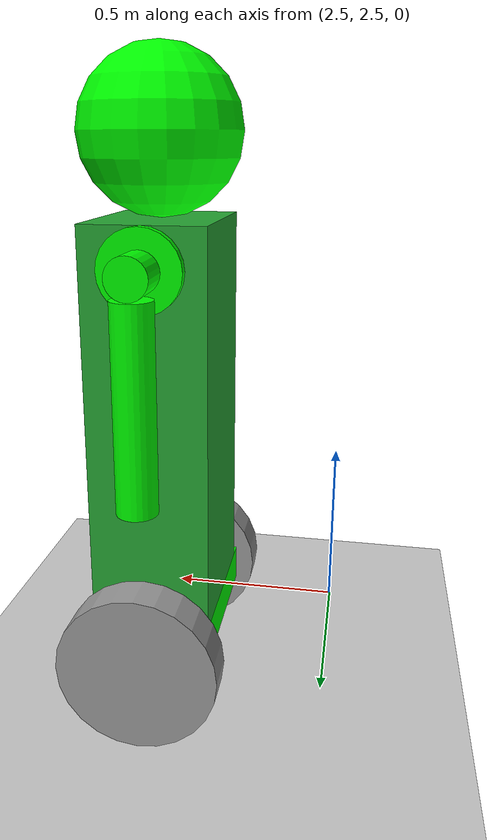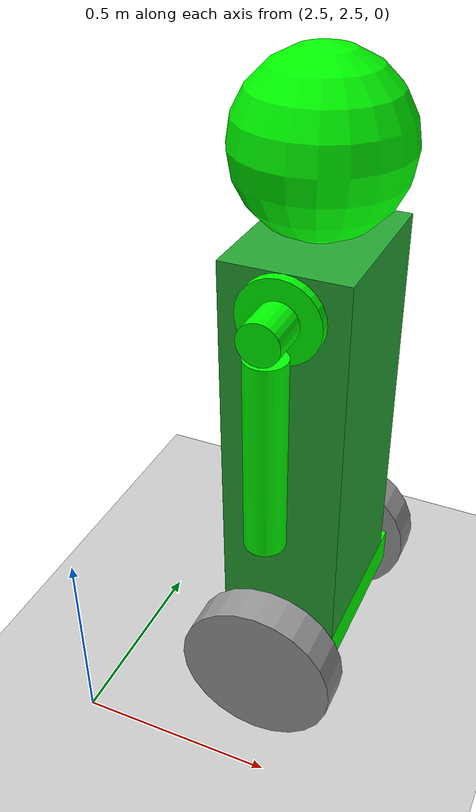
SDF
<sdf version="1.6">
 <world name="default">
  <model name="ground_plane">
   <static>1</static>
   <link name="link">
    <collision name="collision">
     <geometry><plane><normal>0 0 1</normal><size>100 100</size></plane></geometry>
     <surface>
      <contact><collide_bitmask>65535</collide_bitmask></contact>
      <friction><ode><mu>100</mu><mu2>50</mu2></ode></friction>
     </surface>
    </collision>
    <visual name="visual">
     <cast_shadows>0</cast_shadows>
     <geometry><plane><normal>0 0 1</normal><size>100 100</size></plane></geometry>
     <material>
      <script><uri>file://media/materials/scripts/gazebo.material</uri><name>Gazebo/Grey</name></script>
     </material>
    </visual>
   </link>
  </model>
  <model name="humanoid_robot">
   <link name="link_0">
    <pose>0 0 -0.1375 0 -0 0</pose>
    <inertial>
     <mass>10</mass>
     <inertia>
      <ixx>0.216667</ixx>
      <ixy>0</ixy>
      <ixz>0</ixz>
      <iyy>0.0833333</iyy>
      <iyz>0</iyz>
      <izz>0.283333</izz>
     </inertia>
    </inertial>
    <visual name="visual">
     <geometry><box><size>0.3 0.5 0.1</size></box></geometry>
     <material>
      <lighting>1</lighting>
      <script><uri>file://media/materials/scripts/gazebo.material</uri><name>Gazebo/Grey</name></script>
      <shader type="pixel"><normal_map>__default__</normal_map></shader>
      <ambient>0 1 0 1</ambient>
      <diffuse>0.7 0.7 0.7 1</diffuse>
      <specular>0.01 0.01 0.01 1</specular>
      <emissive>0 0 0 1</emissive>
     </material>
    </visual>
    <collision name="collision">
     <geometry><box><size>0.3 0.5 0.1</size></box></geometry>
     <surface>
      <friction>
       <ode><mu>1</mu><mu2>1</mu2><fdir1>0 0 0</fdir1><slip1>0</slip1><slip2>0</slip2></ode>
       <torsional>
        <coefficient>1</coefficient>
        <patch_radius>0</patch_radius>
        <surface_radius>0</surface_radius>
        <use_patch_radius>1</use_patch_radius>
        <ode><slip>0</slip></ode>
       </torsional>
      </friction>
      <bounce><restitution_coefficient>0</restitution_coefficient><threshold>1e+06</threshold></bounce>
      <contact>
       <collide_without_contact>0</collide_without_contact>
       <collide_without_contact_bitmask>1</collide_without_contact_bitmask>
       <collide_bitmask>1</collide_bitmask>
       <ode>
        <soft_cfm>0</soft_cfm>
        <soft_erp>0.2</soft_erp>
        <kp>1e+13</kp>
        <kd>1</kd>
        <max_vel>0.01</max_vel>
        <min_depth>0</min_depth>
       </ode>
       <bullet>
        <split_impulse>1</split_impulse>
        <split_impulse_penetration_threshold>-0.01</split_impulse_penetration_threshold>
        <soft_cfm>0</soft_cfm>
        <soft_erp>0.2</soft_erp>
        <kp>1e+13</kp>
        <kd>1</kd>
       </bullet>
      </contact>
     </surface>
    </collision>
   </link>
   <link name="link_0_0">
    <pose>0 0 1.1125 0 -0 0</pose>
    <inertial>
     <mass>0.25</mass>
     <inertia><ixx>0.1</ixx><ixy>0</ixy><ixz>0</ixz><iyy>0.1</iyy><iyz>0</iyz><izz>0.1</izz></inertia>
    </inertial>
    <visual name="visual">
     <geometry><sphere><radius>0.2</radius></sphere></geometry>
     <material>
      <lighting>1</lighting>
      <script><uri>file://media/materials/scripts/gazebo.material</uri><name>Gazebo/Grey</name></script>
      <shader type="pixel"><normal_map>__default__</normal_map></shader>
      <ambient>0 1 0 1</ambient>
      <diffuse>0.7 0.7 0.7 1</diffuse>
      <specular>0.01 0.01 0.01 1</specular>
      <emissive>0 0 0 1</emissive>
     </material>
    </visual>
    <collision name="collision">
     <geometry><sphere><radius>0.2</radius></sphere></geometry>
     <surface>
      <friction>
       <ode><mu>1</mu><mu2>1</mu2><fdir1>0 0 0</fdir1><slip1>0</slip1><slip2>0</slip2></ode>
       <torsional>
        <coefficient>1</coefficient>
        <patch_radius>0</patch_radius>
        <surface_radius>0</surface_radius>
        <use_patch_radius>1</use_patch_radius>
        <ode><slip>0</slip></ode>
       </torsional>
      </friction>
      <bounce><restitution_coefficient>0</restitution_coefficient><threshold>1e+06</threshold></bounce>
      <contact>
       <collide_without_contact>0</collide_without_contact>
       <collide_without_contact_bitmask>1</collide_without_contact_bitmask>
       <collide_bitmask>1</collide_bitmask>
       <ode>
        <soft_cfm>0</soft_cfm>
        <soft_erp>0.2</soft_erp>
        <kp>1e+13</kp>
        <kd>1</kd>
        <max_vel>0.01</max_vel>
        <min_depth>0</min_depth>
       </ode>
       <bullet>
        <split_impulse>1</split_impulse>
        <split_impulse_penetration_threshold>-0.01</split_impulse_penetration_threshold>
        <soft_cfm>0</soft_cfm>
        <soft_erp>0.2</soft_erp>
        <kp>1e+13</kp>
        <kd>1</kd>
       </bullet>
      </contact>
     </surface>
    </collision>
   </link>
   <link name="link_1">
    <pose>0 -0.300019 -0.137182 1.5707 -0 0</pose>
    <inertial>
     <mass>1</mass>
     <inertia><ixx>0.145833</ixx><ixy>0</ixy><ixz>0</ixz><iyy>0.145833</iyy><iyz>0</iyz><izz>0.125</izz></inertia>
    </inertial>
    <visual name="visual">
     <geometry><cylinder><radius>0.2</radius><length>0.1</length></cylinder></geometry>
     <material>
      <lighting>1</lighting>
      <script><uri>file://media/materials/scripts/gazebo.material</uri><name>Gazebo/Grey</name></script>
      <shader type="pixel"><normal_map>__default__</normal_map></shader>
      <ambient>1 1 1 1</ambient>
      <diffuse>0.7 0.7 0.7 1</diffuse>
      <specular>0.01 0.01 0.01 1</specular>
      <emissive>0 0 0 1</emissive>
     </material>
    </visual>
    <collision name="collision">
     <geometry><cylinder><radius>0.2</radius><length>0.1</length></cylinder></geometry>
     <surface>
      <friction>
       <ode><mu>1</mu><mu2>1</mu2><fdir1>0 0 0</fdir1><slip1>0</slip1><slip2>0</slip2></ode>
       <torsional>
        <coefficient>1</coefficient>
        <patch_radius>0</patch_radius>
        <surface_radius>0</surface_radius>
        <use_patch_radius>1</use_patch_radius>
        <ode><slip>0</slip></ode>
       </torsional>
      </friction>
      <bounce><restitution_coefficient>0</restitution_coefficient><threshold>1e+06</threshold></bounce>
      <contact>
       <collide_without_contact>0</collide_without_contact>
       <collide_without_contact_bitmask>1</collide_without_contact_bitmask>
       <collide_bitmask>1</collide_bitmask>
       <ode>
        <soft_cfm>0</soft_cfm>
        <soft_erp>0.2</soft_erp>
        <kp>1e+13</kp>
        <kd>1</kd>
        <max_vel>0.01</max_vel>
        <min_depth>0</min_depth>
       </ode>
       <bullet>
        <split_impulse>1</split_impulse>
        <split_impulse_penetration_threshold>-0.01</split_impulse_penetration_threshold>
        <soft_cfm>0</soft_cfm>
        <soft_erp>0.2</soft_erp>
        <kp>1e+13</kp>
        <kd>1</kd>
       </bullet>
      </contact>
     </surface>
    </collision>
   </link>
   <link name="link_1_0">
    <pose>0 -0.275033 0.812507 1.5707 -0 0</pose>
    <inertial>
     <mass>0.1</mass>
     <inertia><ixx>0.145833</ixx><ixy>0</ixy><ixz>0</ixz><iyy>0.145833</iyy><iyz>0</iyz><izz>0.125</izz></inertia>
    </inertial>
    <visual name="visual">
     <geometry><cylinder><radius>0.05</radius><length>0.1</length></cylinder></geometry>
     <material>
      <lighting>1</lighting>
      <script><uri>file://media/materials/scripts/gazebo.material</uri><name>Gazebo/Grey</name></script>
      <shader type="pixel"><normal_map>__default__</normal_map></shader>
      <ambient>0 1 0 1</ambient>
      <diffuse>0.7 0.7 0.7 1</diffuse>
      <specular>0.01 0.01 0.01 1</specular>
      <emissive>0 0 0 1</emissive>
     </material>
    </visual>
    <collision name="collision">
     <geometry><cylinder><radius>0.05</radius><length>0.1</length></cylinder></geometry>
     <surface>
      <friction>
       <ode><mu>1</mu><mu2>1</mu2><fdir1>0 0 0</fdir1><slip1>0</slip1><slip2>0</slip2></ode>
       <torsional>
        <coefficient>1</coefficient>
        <patch_radius>0</patch_radius>
        <surface_radius>0</surface_radius>
        <use_patch_radius>1</use_patch_radius>
        <ode><slip>0</slip></ode>
       </torsional>
      </friction>
      <bounce><restitution_coefficient>0</restitution_coefficient><threshold>1e+06</threshold></bounce>
      <contact>
       <collide_without_contact>0</collide_without_contact>
       <collide_without_contact_bitmask>1</collide_without_contact_bitmask>
       <collide_bitmask>1</collide_bitmask>
       <ode>
        <soft_cfm>0</soft_cfm>
        <soft_erp>0.2</soft_erp>
        <kp>1e+13</kp>
        <kd>1</kd>
        <max_vel>0.01</max_vel>
        <min_depth>0</min_depth>
       </ode>
       <bullet>
        <split_impulse>1</split_impulse>
        <split_impulse_penetration_threshold>-0.01</split_impulse_penetration_threshold>
        <soft_cfm>0</soft_cfm>
        <soft_erp>0.2</soft_erp>
        <kp>1e+13</kp>
        <kd>1</kd>
       </bullet>
      </contact>
     </surface>
    </collision>
   </link>
   <link name="link_1_0_clone">
    <pose>0 0.275024 0.812479 1.5707 -0 0</pose>
    <inertial>
     <mass>0.1</mass>
     <inertia><ixx>0.145833</ixx><ixy>0</ixy><ixz>0</ixz><iyy>0.145833</iyy><iyz>0</iyz><izz>0.125</izz></inertia>
    </inertial>
    <visual name="visual_0">
     <geometry><cylinder><radius>0.05</radius><length>0.1</length></cylinder></geometry>
     <material>
      <lighting>1</lighting>
      <script><uri>file://media/materials/scripts/gazebo.material</uri><name>Gazebo/Grey</name></script>
      <shader type="pixel"><normal_map>__default__</normal_map></shader>
      <ambient>0 1 0 1</ambient>
      <diffuse>0.7 0.7 0.7 1</diffuse>
      <specular>0.01 0.01 0.01 1</specular>
      <emissive>0 0 0 1</emissive>
     </material>
    </visual>
    <collision name="collision">
     <geometry><cylinder><radius>0.05</radius><length>0.1</length></cylinder></geometry>
     <surface>
      <friction>
       <ode><mu>1</mu><mu2>1</mu2><fdir1>0 0 0</fdir1><slip1>0</slip1><slip2>0</slip2></ode>
       <torsional>
        <coefficient>1</coefficient>
        <patch_radius>0</patch_radius>
        <surface_radius>0</surface_radius>
        <use_patch_radius>1</use_patch_radius>
        <ode><slip>0</slip></ode>
       </torsional>
      </friction>
      <bounce><restitution_coefficient>0</restitution_coefficient><threshold>1e+06</threshold></bounce>
      <contact>
       <collide_without_contact>0</collide_without_contact>
       <collide_without_contact_bitmask>1</collide_without_contact_bitmask>
       <collide_bitmask>1</collide_bitmask>
       <ode>
        <soft_cfm>0</soft_cfm>
        <soft_erp>0.2</soft_erp>
        <kp>1e+13</kp>
        <kd>1</kd>
        <max_vel>0.01</max_vel>
        <min_depth>0</min_depth>
       </ode>
       <bullet>
        <split_impulse>1</split_impulse>
        <split_impulse_penetration_threshold>-0.01</split_impulse_penetration_threshold>
        <soft_cfm>0</soft_cfm>
        <soft_erp>0.2</soft_erp>
        <kp>1e+13</kp>
        <kd>1</kd>
       </bullet>
      </contact>
     </surface>
    </collision>
   </link>
   <link name="link_1_clone">
    <pose>0 0.300019 -0.137182 1.5707 -0 0</pose>
    <inertial>
     <mass>1</mass>
     <inertia><ixx>0.145833</ixx><ixy>0</ixy><ixz>0</ixz><iyy>0.145833</iyy><iyz>0</iyz><izz>0.125</izz></inertia>
    </inertial>
    <visual name="visual">
     <geometry><cylinder><radius>0.2</radius><length>0.1</length></cylinder></geometry>
     <material>
      <lighting>1</lighting>
      <script><uri>file://media/materials/scripts/gazebo.material</uri><name>Gazebo/Grey</name></script>
      <shader type="pixel"><normal_map>__default__</normal_map></shader>
      <ambient>1 1 1 1</ambient>
      <diffuse>0.7 0.7 0.7 1</diffuse>
      <specular>0.01 0.01 0.01 1</specular>
      <emissive>0 0 0 1</emissive>
     </material>
    </visual>
    <collision name="collision">
     <geometry><cylinder><radius>0.2</radius><length>0.1</length></cylinder></geometry>
     <surface>
      <friction>
       <ode><mu>1</mu><mu2>1</mu2><fdir1>0 0 0</fdir1><slip1>0</slip1><slip2>0</slip2></ode>
       <torsional>
        <coefficient>1</coefficient>
        <patch_radius>0</patch_radius>
        <surface_radius>0</surface_radius>
        <use_patch_radius>1</use_patch_radius>
        <ode><slip>0</slip></ode>
       </torsional>
      </friction>
      <bounce><restitution_coefficient>0</restitution_coefficient><threshold>1e+06</threshold></bounce>
      <contact>
       <collide_without_contact>0</collide_without_contact>
       <collide_without_contact_bitmask>1</collide_without_contact_bitmask>
       <collide_bitmask>1</collide_bitmask>
       <ode>
        <soft_cfm>0</soft_cfm>
        <soft_erp>0.2</soft_erp>
        <kp>1e+13</kp>
        <kd>1</kd>
        <max_vel>0.01</max_vel>
        <min_depth>0</min_depth>
       </ode>
       <bullet>
        <split_impulse>1</split_impulse>
        <split_impulse_penetration_threshold>-0.01</split_impulse_penetration_threshold>
        <soft_cfm>0</soft_cfm>
        <soft_erp>0.2</soft_erp>
        <kp>1e+13</kp>
        <kd>1</kd>
       </bullet>
      </contact>
     </surface>
    </collision>
   </link>
   <link name="link_1_clone_0">
    <pose>0 -0.21251 0.812499 1.5707 -0 0</pose>
    <inertial>
     <mass>1</mass>
     <inertia><ixx>0.145833</ixx><ixy>0</ixy><ixz>0</ixz><iyy>0.145833</iyy><iyz>0</iyz><izz>0.125</izz></inertia>
    </inertial>
    <visual name="visual">
     <geometry><cylinder><radius>0.1</radius><length>0.025</length></cylinder></geometry>
     <material>
      <lighting>1</lighting>
      <script><uri>file://media/materials/scripts/gazebo.material</uri><name>Gazebo/Grey</name></script>
      <shader type="pixel"><normal_map>__default__</normal_map></shader>
      <ambient>0 1 0 1</ambient>
      <diffuse>0.7 0.7 0.7 1</diffuse>
      <specular>0.01 0.01 0.01 1</specular>
      <emissive>0 0 0 1</emissive>
     </material>
    </visual>
    <collision name="collision">
     <geometry><cylinder><radius>0.1</radius><length>0.025</length></cylinder></geometry>
     <surface>
      <friction>
       <ode><mu>1</mu><mu2>1</mu2><fdir1>0 0 0</fdir1><slip1>0</slip1><slip2>0</slip2></ode>
       <torsional>
        <coefficient>1</coefficient>
        <patch_radius>0</patch_radius>
        <surface_radius>0</surface_radius>
        <use_patch_radius>1</use_patch_radius>
        <ode><slip>0</slip></ode>
       </torsional>
      </friction>
      <bounce><restitution_coefficient>0</restitution_coefficient><threshold>1e+06</threshold></bounce>
      <contact>
       <collide_without_contact>0</collide_without_contact>
       <collide_without_contact_bitmask>1</collide_without_contact_bitmask>
       <collide_bitmask>1</collide_bitmask>
       <ode>
        <soft_cfm>0</soft_cfm>
        <soft_erp>0.2</soft_erp>
        <kp>1e+13</kp>
        <kd>1</kd>
        <max_vel>0.01</max_vel>
        <min_depth>0</min_depth>
       </ode>
       <bullet>
        <split_impulse>1</split_impulse>
        <split_impulse_penetration_threshold>-0.01</split_impulse_penetration_threshold>
        <soft_cfm>0</soft_cfm>
        <soft_erp>0.2</soft_erp>
        <kp>1e+13</kp>
        <kd>1</kd>
       </bullet>
      </contact>
     </surface>
    </collision>
   </link>
   <link name="link_1_clone_0_clone">
    <pose>0 0.21251 0.812499 1.5707 -0 0</pose>
    <inertial>
     <mass>1</mass>
     <inertia><ixx>0.145833</ixx><ixy>0</ixy><ixz>0</ixz><iyy>0.145833</iyy><iyz>0</iyz><izz>0.125</izz></inertia>
    </inertial>
    <visual name="visual">
     <geometry><cylinder><radius>0.1</radius><length>0.025</length></cylinder></geometry>
     <material>
      <lighting>1</lighting>
      <script><uri>file://media/materials/scripts/gazebo.material</uri><name>Gazebo/Grey</name></script>
      <shader type="pixel"><normal_map>__default__</normal_map></shader>
      <ambient>0 1 0 1</ambient>
      <diffuse>0.7 0.7 0.7 1</diffuse>
      <specular>0.01 0.01 0.01 1</specular>
      <emissive>0 0 0 1</emissive>
     </material>
    </visual>
    <collision name="collision">
     <geometry><cylinder><radius>0.1</radius><length>0.025</length></cylinder></geometry>
     <surface>
      <friction>
       <ode><mu>1</mu><mu2>1</mu2><fdir1>0 0 0</fdir1><slip1>0</slip1><slip2>0</slip2></ode>
       <torsional>
        <coefficient>1</coefficient>
        <patch_radius>0</patch_radius>
        <surface_radius>0</surface_radius>
        <use_patch_radius>1</use_patch_radius>
        <ode><slip>0</slip></ode>
       </torsional>
      </friction>
      <bounce><restitution_coefficient>0</restitution_coefficient><threshold>1e+06</threshold></bounce>
      <contact>
       <collide_without_contact>0</collide_without_contact>
       <collide_without_contact_bitmask>1</collide_without_contact_bitmask>
       <collide_bitmask>1</collide_bitmask>
       <ode>
        <soft_cfm>0</soft_cfm>
        <soft_erp>0.2</soft_erp>
        <kp>1e+13</kp>
        <kd>1</kd>
        <max_vel>0.01</max_vel>
        <min_depth>0</min_depth>
       </ode>
       <bullet>
        <split_impulse>1</split_impulse>
        <split_impulse_penetration_threshold>-0.01</split_impulse_penetration_threshold>
        <soft_cfm>0</soft_cfm>
        <soft_erp>0.2</soft_erp>
        <kp>1e+13</kp>
        <kd>1</kd>
       </bullet>
      </contact>
     </surface>
    </collision>
   </link>
   <link name="link_3">
    <pose>0 0 0.4125 0 -0 0</pose>
    <inertial>
     <mass>1</mass>
     <inertia>
      <ixx>0.166667</ixx>
      <ixy>0</ixy>
      <ixz>0</ixz>
      <iyy>0.166667</iyy>
      <iyz>0</iyz>
      <izz>0.166667</izz>
     </inertia>
    </inertial>
    <visual name="visual">
     <geometry><box><size>0.3 0.4 1</size></box></geometry>
     <material>
      <lighting>1</lighting>
      <script><uri>file://media/materials/scripts/gazebo.material</uri><name>Gazebo/Green</name></script>
      <shader type="pixel"><normal_map>__default__</normal_map></shader>
      <ambient>0 1 0 1</ambient>
      <diffuse>0.7 0.7 0.7 1</diffuse>
      <specular>0.01 0.01 0.01 1</specular>
      <emissive>0 0 0 1</emissive>
     </material>
    </visual>
    <collision name="collision">
     <geometry><box><size>0.3 0.4 1</size></box></geometry>
     <surface>
      <friction>
       <ode><mu>1</mu><mu2>1</mu2><fdir1>0 0 0</fdir1><slip1>0</slip1><slip2>0</slip2></ode>
       <torsional>
        <coefficient>1</coefficient>
        <patch_radius>0</patch_radius>
        <surface_radius>0</surface_radius>
        <use_patch_radius>1</use_patch_radius>
        <ode><slip>0</slip></ode>
       </torsional>
      </friction>
      <bounce><restitution_coefficient>0</restitution_coefficient><threshold>1e+06</threshold></bounce>
      <contact>
       <collide_without_contact>0</collide_without_contact>
       <collide_without_contact_bitmask>1</collide_without_contact_bitmask>
       <collide_bitmask>1</collide_bitmask>
       <ode>
        <soft_cfm>0</soft_cfm>
        <soft_erp>0.2</soft_erp>
        <kp>1e+13</kp>
        <kd>1</kd>
        <max_vel>0.01</max_vel>
        <min_depth>0</min_depth>
       </ode>
       <bullet>
        <split_impulse>1</split_impulse>
        <split_impulse_penetration_threshold>-0.01</split_impulse_penetration_threshold>
        <soft_cfm>0</soft_cfm>
        <soft_erp>0.2</soft_erp>
        <kp>1e+13</kp>
        <kd>1</kd>
       </bullet>
      </contact>
     </surface>
    </collision>
   </link>
   <link name="link_3_0">
    <pose>0 -0.285062 0.512562 0 -0 0</pose>
    <inertial>
     <mass>0.5</mass>
     <inertia><ixx>0.145833</ixx><ixy>0</ixy><ixz>0</ixz><iyy>0.145833</iyy><iyz>0</iyz><izz>0.125</izz></inertia>
    </inertial>
    <visual name="visual">
     <geometry><cylinder><radius>0.05</radius><length>0.5</length></cylinder></geometry>
     <material>
      <lighting>1</lighting>
      <script><uri>file://media/materials/scripts/gazebo.material</uri><name>Gazebo/Grey</name></script>
      <shader type="pixel"><normal_map>__default__</normal_map></shader>
      <ambient>0 1 0 1</ambient>
      <diffuse>0.7 0.7 0.7 1</diffuse>
      <specular>0.01 0.01 0.01 1</specular>
      <emissive>0 0 0 1</emissive>
     </material>
    </visual>
    <collision name="collision">
     <geometry><cylinder><radius>0.05</radius><length>0.5</length></cylinder></geometry>
     <surface>
      <friction>
       <ode><mu>1</mu><mu2>1</mu2><fdir1>0 0 0</fdir1><slip1>0</slip1><slip2>0</slip2></ode>
       <torsional>
        <coefficient>1</coefficient>
        <patch_radius>0</patch_radius>
        <surface_radius>0</surface_radius>
        <use_patch_radius>1</use_patch_radius>
        <ode><slip>0</slip></ode>
       </torsional>
      </friction>
      <bounce><restitution_coefficient>0</restitution_coefficient><threshold>1e+06</threshold></bounce>
      <contact>
       <collide_without_contact>0</collide_without_contact>
       <collide_without_contact_bitmask>1</collide_without_contact_bitmask>
       <collide_bitmask>1</collide_bitmask>
       <ode>
        <soft_cfm>0</soft_cfm>
        <soft_erp>0.2</soft_erp>
        <kp>1e+13</kp>
        <kd>1</kd>
        <max_vel>0.01</max_vel>
        <min_depth>0</min_depth>
       </ode>
       <bullet>
        <split_impulse>1</split_impulse>
        <split_impulse_penetration_threshold>-0.01</split_impulse_penetration_threshold>
        <soft_cfm>0</soft_cfm>
        <soft_erp>0.2</soft_erp>
        <kp>1e+13</kp>
        <kd>1</kd>
       </bullet>
      </contact>
     </surface>
    </collision>
   </link>
   <link name="link_3_0_clone">
    <pose>0 0.284995 0.512478 0 -0 0</pose>
    <inertial>
     <mass>0.5</mass>
     <inertia><ixx>0.145833</ixx><ixy>0</ixy><ixz>0</ixz><iyy>0.145833</iyy><iyz>0</iyz><izz>0.125</izz></inertia>
    </inertial>
    <visual name="visual_0">
     <geometry><cylinder><radius>0.05</radius><length>0.5</length></cylinder></geometry>
     <material>
      <lighting>1</lighting>
      <script><uri>file://media/materials/scripts/gazebo.material</uri><name>Gazebo/Grey</name></script>
      <shader type="pixel"><normal_map>__default__</normal_map></shader>
      <ambient>0 1 0 1</ambient>
      <diffuse>0.7 0.7 0.7 1</diffuse>
      <specular>0.01 0.01 0.01 1</specular>
      <emissive>0 0 0 1</emissive>
     </material>
    </visual>
    <collision name="collision">
     <geometry><cylinder><radius>0.05</radius><length>0.5</length></cylinder></geometry>
     <surface>
      <friction>
       <ode><mu>1</mu><mu2>1</mu2><fdir1>0 0 0</fdir1><slip1>0</slip1><slip2>0</slip2></ode>
       <torsional>
        <coefficient>1</coefficient>
        <patch_radius>0</patch_radius>
        <surface_radius>0</surface_radius>
        <use_patch_radius>1</use_patch_radius>
        <ode><slip>0</slip></ode>
       </torsional>
      </friction>
      <bounce><restitution_coefficient>0</restitution_coefficient><threshold>1e+06</threshold></bounce>
      <contact>
       <collide_without_contact>0</collide_without_contact>
       <collide_without_contact_bitmask>1</collide_without_contact_bitmask>
       <collide_bitmask>1</collide_bitmask>
       <ode>
        <soft_cfm>0</soft_cfm>
        <soft_erp>0.2</soft_erp>
        <kp>1e+13</kp>
        <kd>1</kd>
        <max_vel>0.01</max_vel>
        <min_depth>0</min_depth>
       </ode>
       <bullet>
        <split_impulse>1</split_impulse>
        <split_impulse_penetration_threshold>-0.01</split_impulse_penetration_threshold>
        <soft_cfm>0</soft_cfm>
        <soft_erp>0.2</soft_erp>
        <kp>1e+13</kp>
        <kd>1</kd>
       </bullet>
      </contact>
     </surface>
    </collision>
   </link>
   <joint name="link_0_JOINT_2" type="fixed">
    <parent>link_0</parent>
    <child>link_3</child>
    <physics>
     <ode><limit><cfm>0</cfm><erp>0.2</erp></limit><suspension><cfm>0</cfm><erp>0.2</erp></suspension></ode>
    </physics>
   </joint>
   <joint name="link_0_JOINT_3" type="revolute">
    <parent>link_0</parent>
    <child>link_1</child>
    <axis>
     <xyz>0 0 -1</xyz>
     <use_parent_model_frame>0</use_parent_model_frame>
     <limit>
      <lower>-1.79769e+308</lower>
      <upper>1.79769e+308</upper>
      <effort>-1</effort>
      <velocity>-1</velocity>
     </limit>
     <dynamics>
      <spring_reference>0</spring_reference>
      <spring_stiffness>0</spring_stiffness>
      <damping>0</damping>
     </dynamics>
    </axis>
    <physics>
     <ode><limit><cfm>0</cfm><erp>0.2</erp></limit><suspension><cfm>0</cfm><erp>0.2</erp></suspension></ode>
    </physics>
   </joint>
   <joint name="link_0_JOINT_5" type="revolute">
    <parent>link_0</parent>
    <child>link_1_clone</child>
    <axis>
     <xyz>0 0 1</xyz>
     <use_parent_model_frame>0</use_parent_model_frame>
     <limit>
      <lower>-1.79769e+308</lower>
      <upper>1.79769e+308</upper>
      <effort>-1</effort>
      <velocity>-1</velocity>
     </limit>
     <dynamics>
      <spring_reference>0</spring_reference>
      <spring_stiffness>0</spring_stiffness>
      <damping>0</damping>
     </dynamics>
    </axis>
    <physics>
     <ode><limit><cfm>0</cfm><erp>0.2</erp></limit><suspension><cfm>0</cfm><erp>0.2</erp></suspension></ode>
    </physics>
   </joint>
   <joint name="link_1_0_JOINT_16" type="fixed">
    <parent>link_1_0</parent>
    <child>link_3_0</child>
    <physics>
     <ode><limit><cfm>0</cfm><erp>0.2</erp></limit><suspension><cfm>0</cfm><erp>0.2</erp></suspension></ode>
    </physics>
   </joint>
   <joint name="link_1_0_clone_JOINT_17" type="fixed">
    <parent>link_1_0_clone</parent>
    <child>link_3_0_clone</child>
    <physics>
     <ode><limit><cfm>0</cfm><erp>0.2</erp></limit><suspension><cfm>0</cfm><erp>0.2</erp></suspension></ode>
    </physics>
   </joint>
   <joint name="link_1_clone_0_JOINT_10" type="revolute">
    <parent>link_1_clone_0</parent>
    <child>link_1_0</child>
    <axis>
     <xyz>0 0 1</xyz>
     <use_parent_model_frame>0</use_parent_model_frame>
     <limit>
      <lower>-1.79769e+308</lower>
      <upper>1.79769e+308</upper>
      <effort>50</effort>
      <velocity>-1</velocity>
     </limit>
     <dynamics>
      <spring_reference>0</spring_reference>
      <spring_stiffness>0</spring_stiffness>
      <damping>0</damping>
      <friction>0</friction>
     </dynamics>
    </axis>
    <physics>
     <ode><limit><cfm>0</cfm><erp>0.2</erp></limit><suspension><cfm>0</cfm><erp>0.2</erp></suspension></ode>
    </physics>
   </joint>
   <joint name="link_1_clone_0_clone_JOINT_0" type="revolute">
    <parent>link_1_clone_0_clone</parent>
    <child>link_1_0_clone</child>
    <axis>
     <xyz>0 0 1</xyz>
     <use_parent_model_frame>0</use_parent_model_frame>
     <limit>
      <lower>-1.79769e+308</lower>
      <upper>1.79769e+308</upper>
      <effort>50</effort>
      <velocity>-1</velocity>
     </limit>
     <dynamics>
      <spring_reference>0</spring_reference>
      <spring_stiffness>0</spring_stiffness>
      <damping>0</damping>
      <friction>0</friction>
     </dynamics>
    </axis>
    <physics>
     <ode><limit><cfm>0</cfm><erp>0.2</erp></limit><suspension><cfm>0</cfm><erp>0.2</erp></suspension></ode>
    </physics>
   </joint>
   <joint name="link_3_JOINT_2" type="fixed">
    <parent>link_3</parent>
    <child>link_1_clone_0</child>
    <physics>
     <ode><limit><cfm>0</cfm><erp>0.2</erp></limit><suspension><cfm>0</cfm><erp>0.2</erp></suspension></ode>
    </physics>
   </joint>
   <joint name="link_3_JOINT_3" type="fixed">
    <parent>link_3</parent>
    <child>link_1_clone_0_clone</child>
    <physics>
     <ode><limit><cfm>0</cfm><erp>0.2</erp></limit><suspension><cfm>0</cfm><erp>0.2</erp></suspension></ode>
    </physics>
   </joint>
   <joint name="link_3_JOINT_5" type="fixed">
    <parent>link_3</parent>
    <child>link_0_0</child>
    <physics>
     <ode><limit><cfm>0</cfm><erp>0.2</erp></limit><suspension><cfm>0</cfm><erp>0.2</erp></suspension></ode>
    </physics>
   </joint>
   <static>0</static>
   <pose>2.93 2.95934 0.337186 4e-06 -0 0</pose>
  </model>
 </world>
</sdf>
